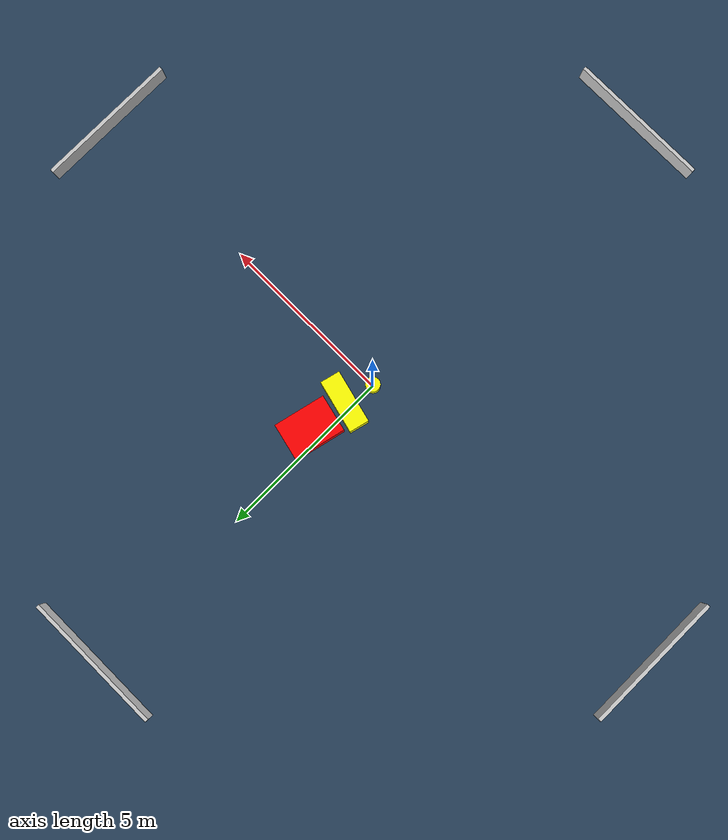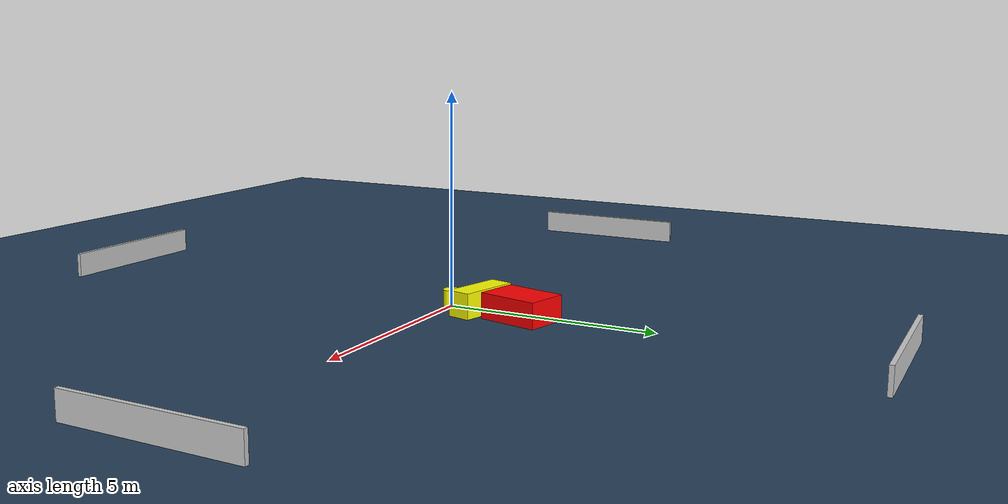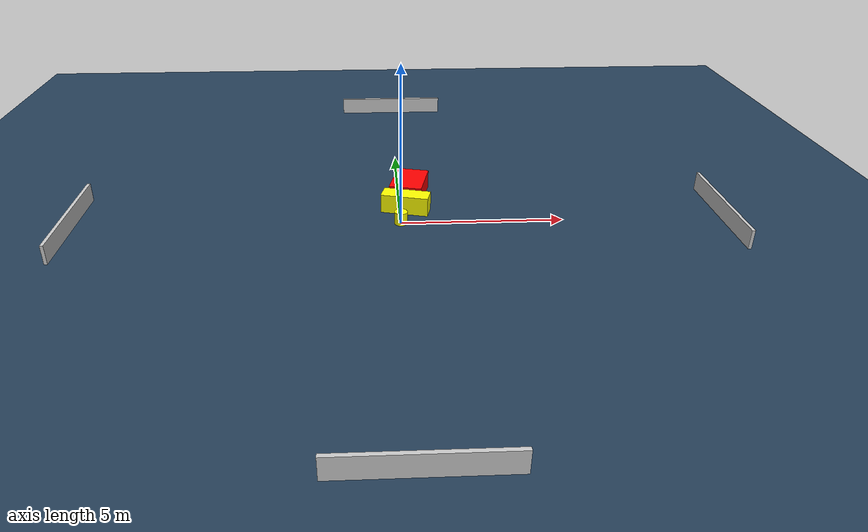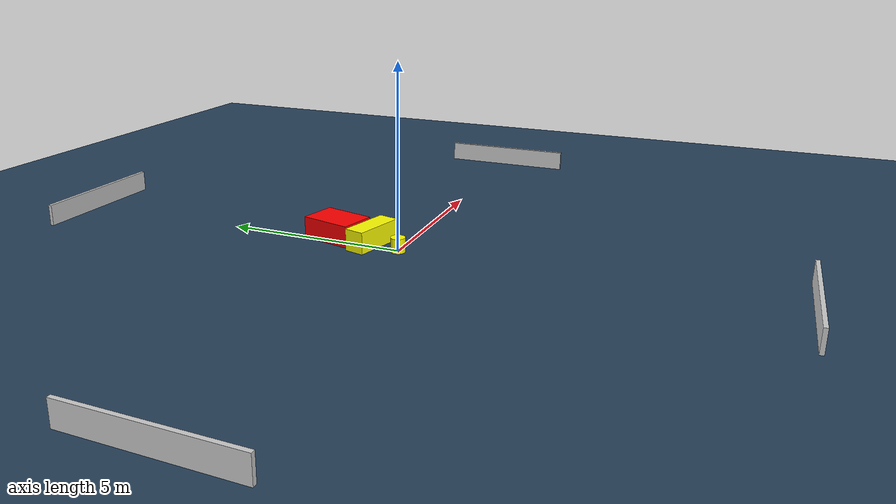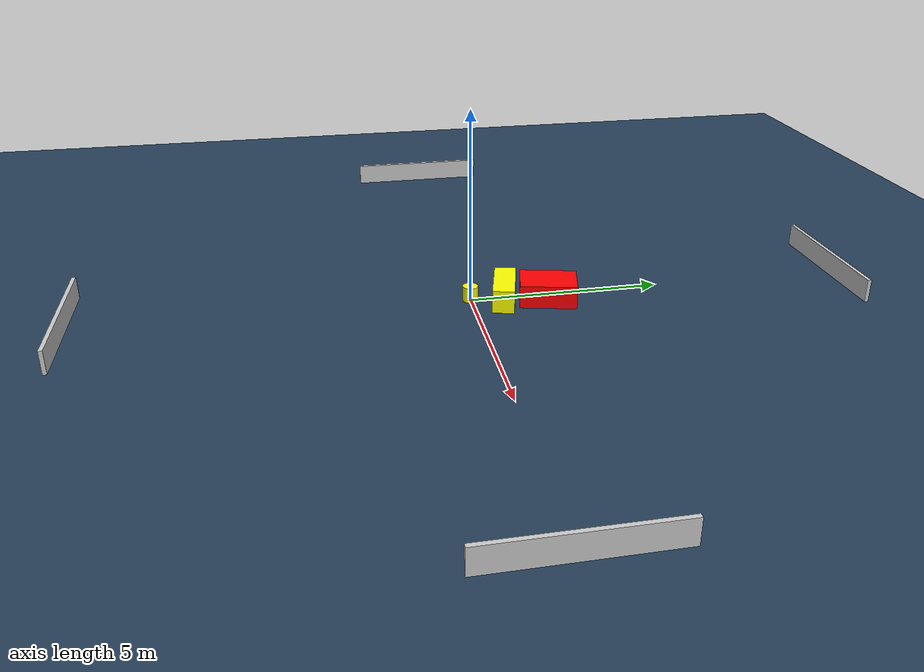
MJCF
<?xml version="1.0" ?>
<mujoco model="generated_environment">
  <option timestep="0.01" integrator="RK4" cone="elliptic"/>
  <default>
    <geom density="1"/>
  </default>
  <asset>
    <texture builtin="gradient" height="3072" name="skybox" rgb1="0.3 0.5 0.7" rgb2="0 0 0" type="skybox" width="512"/>
    <texture builtin="checker" height="300" name="groundplane" rgb1="0.2 0.3 0.4" rgb2="0.1 0.2 0.3" type="2d" width="300"/>
    <material name="groundplane" reflectance="0.2" texrepeat="5 5" texture="groundplane"/>
  </asset>
  <worldbody>
    <light dir="0 0 -1" directional="true" pos="0 0 1.5"/>
    <geom condim="3" friction="0.5 0.005 0.001" material="groundplane" name="floor" pos="0 0 0" size="0 0 0.05" type="plane"/>
    <body name="walls">
      <geom name="wall_1" condim="4" pos="-10.0 0.0 0.3" rgba="0.800000011920929 0.800000011920929 0.800000011920929 1.0" size="0.05 2.0 0.3" type="box"/>
      <geom name="wall_2" condim="4" pos="10.0 0.0 0.3" rgba="0.800000011920929 0.800000011920929 0.800000011920929 1.0" size="0.05 2.0 0.3" type="box"/>
      <geom name="wall_3" condim="4" pos="0.0 -10.0 0.3" rgba="0.800000011920929 0.800000011920929 0.800000011920929 1.0" size="2.0 0.05 0.3" type="box"/>
      <geom name="wall_4" condim="4" pos="0.0 10.0 0.3" rgba="0.800000011920929 0.800000011920929 0.800000011920929 1.0" size="2.0 0.05 0.3" type="box"/>
    </body>
    <body name="robot">
      <joint name="joint_x" type="slide" pos="0 0 0" axis="1 0 0"/>
      <joint name="joint_y" type="slide" pos="0 0 0" axis="0 1 0"/>
      <geom name="robot" type="cylinder" pos="0.0 0.0 0.2" size="0.2 0.2 0.0" mass="5.0" friction="1.0 0.005 0.0001" condim="4" rgba="1.0 1.0 0.0 1.0"/>
    </body>
    <body name="obstacle_1_movable">
      <geom name="obstacle_1_movable" condim="4" pos="0.1870347791764177 0.8510695467250134 0.3" euler="0 0 345.77689624456764" friction="0.0 0.005 0.001" rgba="1.0 1.0 0.0 1.0" size="0.7462213191422105 0.2800070456415883 0.3" type="box" mass="0.1"/>
      <joint type="free"/>
    </body>
    <body name="obstacle_2_static">
      <geom name="obstacle_2_static" condim="4" pos="0.35070952734443595 1.9663402181911978 0.3" euler="0 0 76.65581393124415" friction="0.0 0.005 0.001" rgba="1.0 0.0 0.0 1.0" size="0.7283929275859176 0.5203205129223476 0.3" type="box"/>
    </body>
  </worldbody>
  <actuator>
    <motor name="actuator_x" joint="joint_x" gear="1" ctrlrange="-1 1"/>
    <motor name="actuator_y" joint="joint_y" gear="1" ctrlrange="-1 1"/>
  </actuator>
</mujoco>
